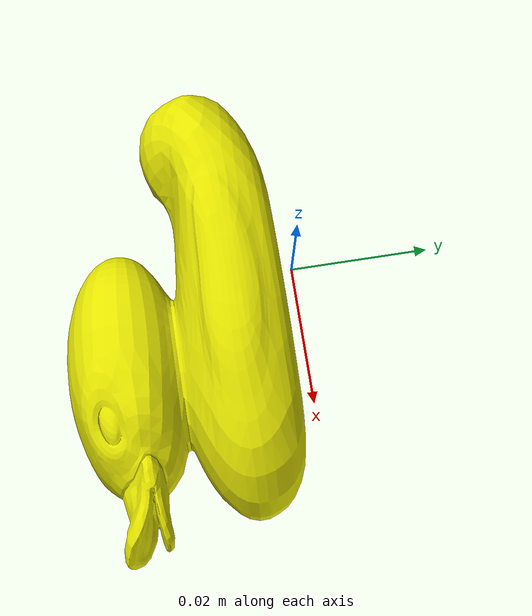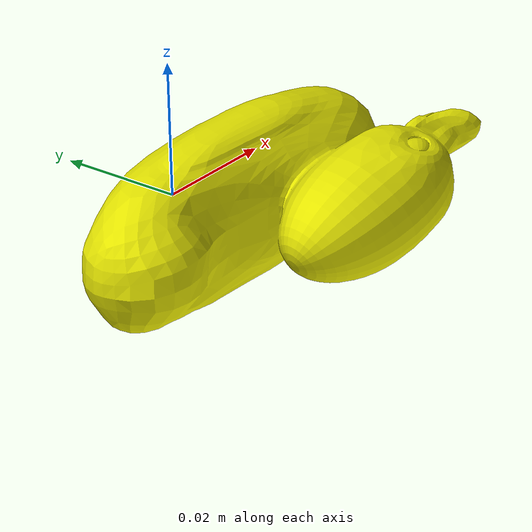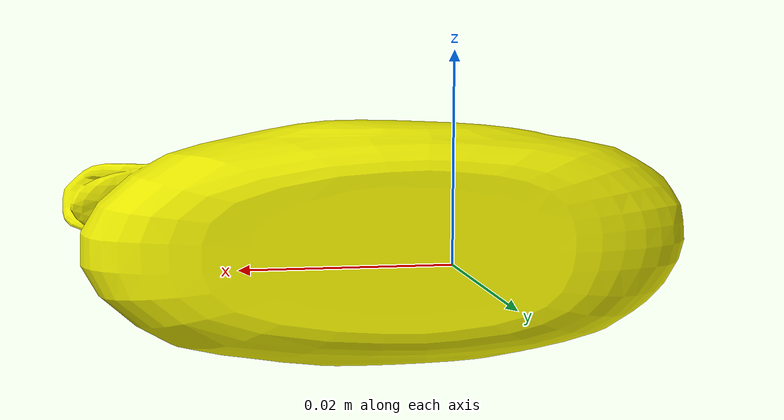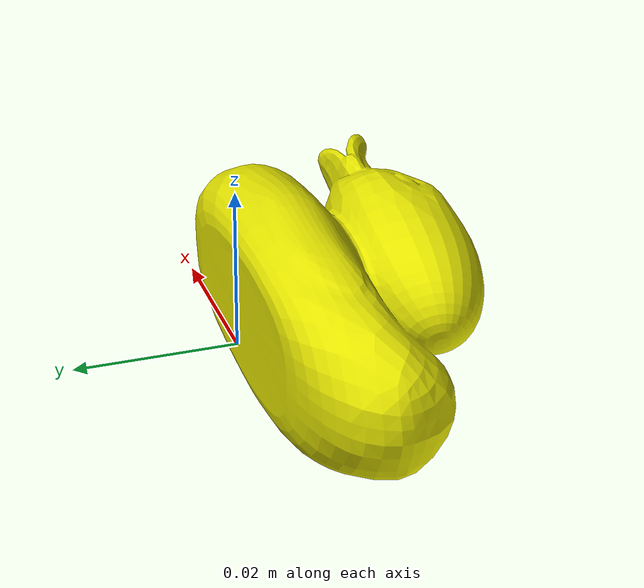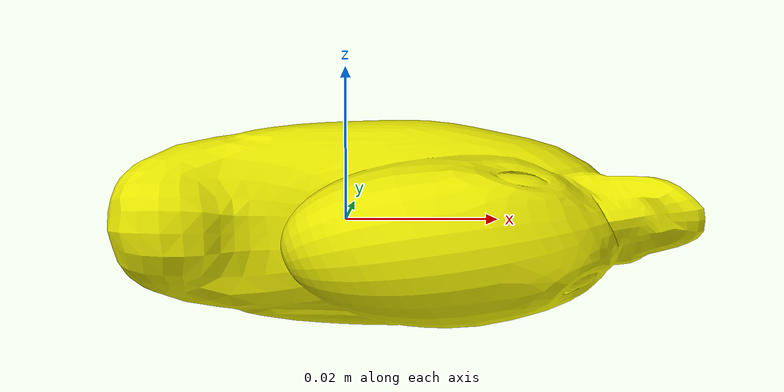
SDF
<?xml version='1.0'?>
<sdf version='1.7'>
  <model name='duck_1'>
    <link name='link'>
      <inertial>
        <pose>0 0 0 0 -0 0</pose>
        <mass>0.01</mass>
        <inertia>
          <ixx>0.01</ixx>
          <ixy>0.01</ixy>
          <ixz>0.01</ixz>
          <iyy>0.01</iyy>
          <iyz>0.01</iyz>
          <izz>0.01</izz>
        </inertia>
      </inertial>
      <self_collide>1</self_collide>
      <enable_wind>0</enable_wind>
      <kinematic>0</kinematic>
      <pose>0 0 0 0 -0 0</pose>
      <gravity>1</gravity>
      <visual name='visual'>
        <pose>0 0 0 1.57 -0 0</pose>
        <geometry>
          <mesh>
            <uri>model://duck/meshes/duck.dae</uri>
            <scale>0.0889 0.062 0.0762</scale>
          </mesh>
        </geometry>
        <material>
          <shader type='pixel'>
            <normal_map>__default__</normal_map>
          </shader>
          <script>
            <name>ModelPreview_3::link::visual_MATERIAL_</name>
            <uri>__default__</uri>
          </script>
          <ambient>0.9 0.9 0 1</ambient>
          <diffuse>0.9 0.9 0 1</diffuse>
          <specular>0 0 0 1</specular>
          <emissive>0.4 0.4 0 1</emissive>
        </material>
        <transparency>0</transparency>
        <cast_shadows>1</cast_shadows>
      </visual>
      <collision name='collision'>
        <laser_retro>0</laser_retro>
        <max_contacts>10</max_contacts>
        <pose>0 0 0 1.57 -0 0</pose>
        <geometry>
          <mesh>
            <uri>/home/user1/.gazebo/models/duck/meshes/duck.dae</uri>
            <scale>0.0889 0.062 0.0762</scale>
          </mesh>
        </geometry>
        <surface>
          <friction>
            <ode>
              <mu>1</mu>
              <mu2>1</mu2>
              <fdir1>0 0 0</fdir1>
              <slip1>0</slip1>
              <slip2>0</slip2>
            </ode>
            <torsional>
              <coefficient>1</coefficient>
              <patch_radius>0</patch_radius>
              <surface_radius>0</surface_radius>
              <use_patch_radius>1</use_patch_radius>
              <ode>
                <slip>0</slip>
              </ode>
            </torsional>
          </friction>
          <bounce>
            <restitution_coefficient>0</restitution_coefficient>
            <threshold>1e+06</threshold>
          </bounce>
          <contact>
            <collide_without_contact>0</collide_without_contact>
            <collide_without_contact_bitmask>1</collide_without_contact_bitmask>
            <collide_bitmask>1</collide_bitmask>
            <ode>
              <soft_cfm>0</soft_cfm>
              <soft_erp>0.2</soft_erp>
              <kp>1e+07</kp>
              <kd>1</kd>
              <max_vel>0.1</max_vel>
              <min_depth>0.001</min_depth>
            </ode>
            <bullet>
              <split_impulse>1</split_impulse>
              <split_impulse_penetration_threshold>-0.01</split_impulse_penetration_threshold>
              <soft_cfm>0</soft_cfm>
              <soft_erp>0.2</soft_erp>
              <kp>1e+07</kp>
              <kd>1</kd>
            </bullet>
          </contact>
        </surface>
      </collision>
    </link>
    <static>0</static>
    <allow_auto_disable>1</allow_auto_disable>
  </model>
</sdf>
